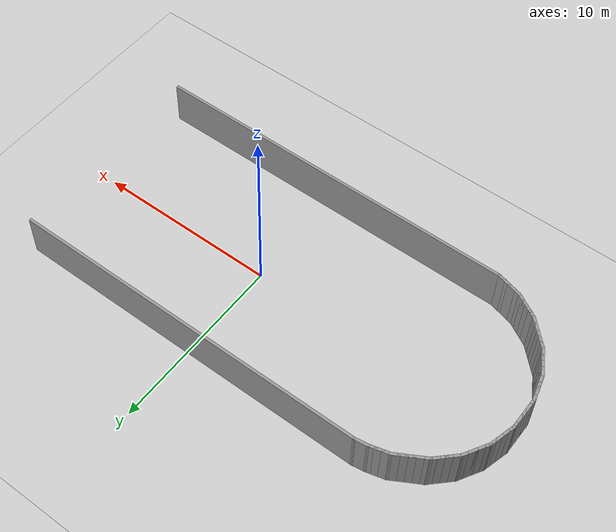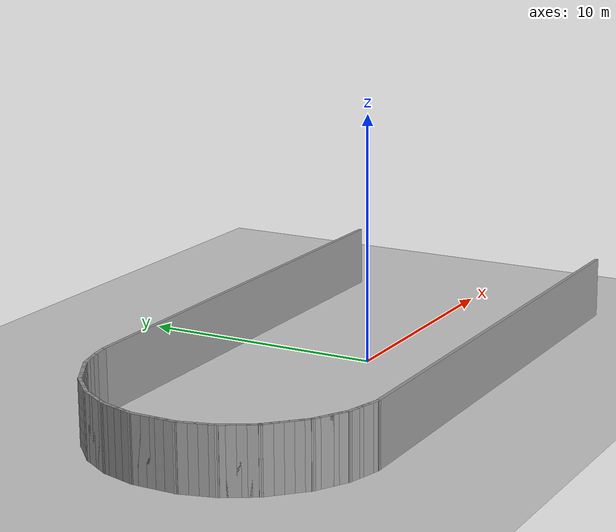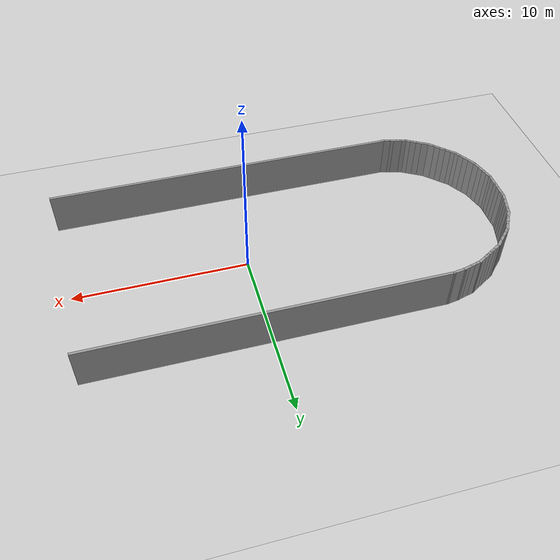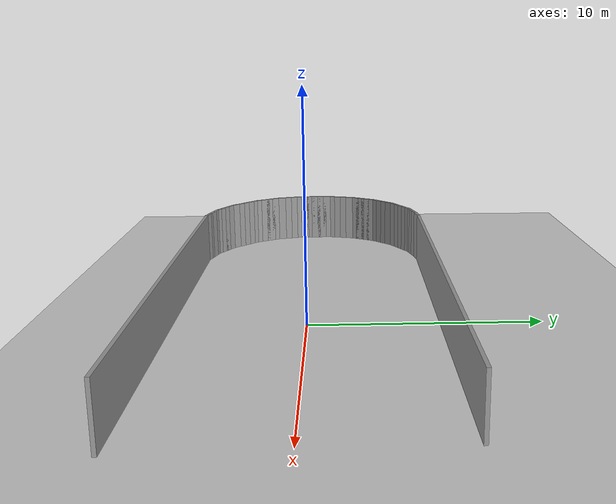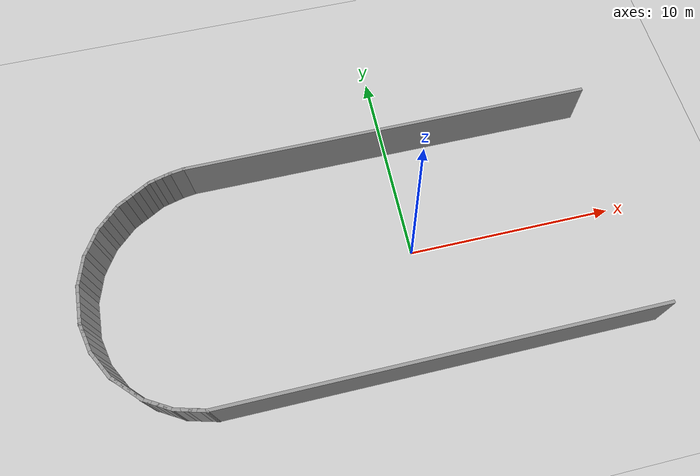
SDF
<sdf version="1.7">
 <world name="default">
  <model name="ground_plane">
   <static>1</static>
   <link name="link">
    <collision name="collision">
     <geometry><plane><normal>0 0 1</normal><size>100 100</size></plane></geometry>
     <surface><friction><ode><mu>100</mu><mu2>50</mu2></ode></friction></surface>
    </collision>
    <visual name="visual">
     <cast_shadows>0</cast_shadows>
     <geometry><plane><normal>0 0 1</normal><size>100 100</size></plane></geometry>
     <material>
      <script><uri>file://media/materials/scripts/gazebo.material</uri><name>Gazebo/Grey</name></script>
     </material>
    </visual>
   </link>
  </model>
  <model name="pool_wall">
   <pose>0.10892 -0.02488 0 0 -0 0</pose>
   <link name="Wall_0">
    <collision name="Wall_0_Collision">
     <geometry><box><size>20 0.15 2.5</size></box></geometry>
     <pose>0 0 1.25 0 -0 0</pose>
    </collision>
    <visual name="Wall_0_Visual">
     <pose>0 0 1.25 0 -0 0</pose>
     <geometry><box><size>20 0.15 2.5</size></box></geometry>
     <material>
      <script><uri>file://media/materials/scripts/gazebo.material</uri><name>Gazebo/Grey</name></script>
      <ambient>1 1 1 1</ambient>
     </material>
     <meta><layer>0</layer></meta>
    </visual>
    <pose>0.020613 5.7088 0 0 -0 0</pose>
   </link>
   <link name="Wall_100">
    <collision name="Wall_100_Collision">
     <geometry><box><size>0.814629 0.15 2.5</size></box></geometry>
     <pose>0 0 1.25 0 -0 0</pose>
    </collision>
    <visual name="Wall_100_Visual">
     <pose>0 0 1.25 0 -0 0</pose>
     <geometry><box><size>0.814629 0.15 2.5</size></box></geometry>
     <material>
      <script><uri>file://media/materials/scripts/gazebo.material</uri><name>Gazebo/Grey</name></script>
      <ambient>1 1 1 1</ambient>
     </material>
     <meta><layer>0</layer></meta>
    </visual>
    <pose>-10.2328 5.65798 0 0 -0 0.153519</pose>
   </link>
   <link name="Wall_51">
    <collision name="Wall_51_Collision">
     <geometry><box><size>20.5 0.15 2.5</size></box></geometry>
     <pose>0 0 1.25 0 -0 0</pose>
    </collision>
    <visual name="Wall_51_Visual">
     <pose>0 0 1.25 0 -0 0</pose>
     <geometry><box><size>20.5 0.15 2.5</size></box></geometry>
     <material>
      <script><uri>file://media/materials/scripts/gazebo.material</uri><name>Gazebo/Grey</name></script>
      <ambient>1 1 1 1</ambient>
     </material>
     <meta><layer>0</layer></meta>
    </visual>
    <pose>-0.103747 -5.7088 0 0 -0 3.14159</pose>
   </link>
   <link name="Wall_52">
    <collision name="Wall_52_Collision">
     <geometry><box><size>0.5 0.15 2.5</size></box></geometry>
     <pose>0 0 1.25 0 -0 0</pose>
    </collision>
    <visual name="Wall_52_Visual">
     <pose>0 0 1.25 0 -0 0</pose>
     <geometry><box><size>0.5 0.15 2.5</size></box></geometry>
     <material>
      <script><uri>file://media/materials/scripts/gazebo.material</uri><name>Gazebo/Grey</name></script>
      <ambient>1 1 1 1</ambient>
     </material>
     <meta><layer>0</layer></meta>
    </visual>
    <pose>-10.4478 -5.6635 0 0 -0 2.87979</pose>
   </link>
   <link name="Wall_53">
    <collision name="Wall_53_Collision">
     <geometry><box><size>0.5 0.15 2.5</size></box></geometry>
     <pose>0 0 1.25 0 -0 0</pose>
    </collision>
    <visual name="Wall_53_Visual">
     <pose>0 0 1.25 0 -0 0</pose>
     <geometry><box><size>0.5 0.15 2.5</size></box></geometry>
     <material>
      <script><uri>file://media/materials/scripts/gazebo.material</uri><name>Gazebo/Grey</name></script>
      <ambient>1 1 1 1</ambient>
     </material>
     <meta><layer>0</layer></meta>
    </visual>
    <pose>-10.7859 -5.57292 0 0 -0 2.87979</pose>
   </link>
   <link name="Wall_54">
    <collision name="Wall_54_Collision">
     <geometry><box><size>0.5 0.15 2.5</size></box></geometry>
     <pose>0 0 1.25 0 -0 0</pose>
    </collision>
    <visual name="Wall_54_Visual">
     <pose>0 0 1.25 0 -0 0</pose>
     <geometry><box><size>0.5 0.15 2.5</size></box></geometry>
     <material>
      <script><uri>file://media/materials/scripts/gazebo.material</uri><name>Gazebo/Grey</name></script>
      <ambient>1 1 1 1</ambient>
     </material>
     <meta><layer>0</layer></meta>
    </visual>
    <pose>-11.1239 -5.48233 0 0 -0 2.87979</pose>
   </link>
   <link name="Wall_55">
    <collision name="Wall_55_Collision">
     <geometry><box><size>0.5 0.15 2.5</size></box></geometry>
     <pose>0 0 1.25 0 -0 0</pose>
    </collision>
    <visual name="Wall_55_Visual">
     <pose>0 0 1.25 0 -0 0</pose>
     <geometry><box><size>0.5 0.15 2.5</size></box></geometry>
     <material>
      <script><uri>file://media/materials/scripts/gazebo.material</uri><name>Gazebo/Grey</name></script>
      <ambient>1 1 1 1</ambient>
     </material>
     <meta><layer>0</layer></meta>
    </visual>
    <pose>-11.462 -5.39174 0 0 -0 2.87979</pose>
   </link>
   <link name="Wall_56">
    <collision name="Wall_56_Collision">
     <geometry><box><size>0.5 0.15 2.5</size></box></geometry>
     <pose>0 0 1.25 0 -0 0</pose>
    </collision>
    <visual name="Wall_56_Visual">
     <pose>0 0 1.25 0 -0 0</pose>
     <geometry><box><size>0.5 0.15 2.5</size></box></geometry>
     <material>
      <script><uri>file://media/materials/scripts/gazebo.material</uri><name>Gazebo/Grey</name></script>
      <ambient>1 1 1 1</ambient>
     </material>
     <meta><layer>0</layer></meta>
    </visual>
    <pose>-11.7826 -5.25895 0 0 -0 2.61799</pose>
   </link>
   <link name="Wall_57">
    <collision name="Wall_57_Collision">
     <geometry><box><size>0.5 0.15 2.5</size></box></geometry>
     <pose>0 0 1.25 0 -0 0</pose>
    </collision>
    <visual name="Wall_57_Visual">
     <pose>0 0 1.25 0 -0 0</pose>
     <geometry><box><size>0.5 0.15 2.5</size></box></geometry>
     <material>
      <script><uri>file://media/materials/scripts/gazebo.material</uri><name>Gazebo/Grey</name></script>
      <ambient>1 1 1 1</ambient>
     </material>
     <meta><layer>0</layer></meta>
    </visual>
    <pose>-12.0857 -5.08395 0 0 -0 2.61799</pose>
   </link>
   <link name="Wall_58">
    <collision name="Wall_58_Collision">
     <geometry><box><size>0.5 0.15 2.5</size></box></geometry>
     <pose>0 0 1.25 0 -0 0</pose>
    </collision>
    <visual name="Wall_58_Visual">
     <pose>0 0 1.25 0 -0 0</pose>
     <geometry><box><size>0.5 0.15 2.5</size></box></geometry>
     <material>
      <script><uri>file://media/materials/scripts/gazebo.material</uri><name>Gazebo/Grey</name></script>
      <ambient>1 1 1 1</ambient>
     </material>
     <meta><layer>0</layer></meta>
    </visual>
    <pose>-12.3888 -4.90895 0 0 -0 2.61799</pose>
   </link>
   <link name="Wall_59">
    <collision name="Wall_59_Collision">
     <geometry><box><size>0.5 0.15 2.5</size></box></geometry>
     <pose>0 0 1.25 0 -0 0</pose>
    </collision>
    <visual name="Wall_59_Visual">
     <pose>0 0 1.25 0 -0 0</pose>
     <geometry><box><size>0.5 0.15 2.5</size></box></geometry>
     <material>
      <script><uri>file://media/materials/scripts/gazebo.material</uri><name>Gazebo/Grey</name></script>
      <ambient>1 1 1 1</ambient>
     </material>
     <meta><layer>0</layer></meta>
    </visual>
    <pose>-12.6919 -4.73395 0 0 -0 2.61799</pose>
   </link>
   <link name="Wall_60">
    <collision name="Wall_60_Collision">
     <geometry><box><size>0.5 0.15 2.5</size></box></geometry>
     <pose>0 0 1.25 0 -0 0</pose>
    </collision>
    <visual name="Wall_60_Visual">
     <pose>0 0 1.25 0 -0 0</pose>
     <geometry><box><size>0.5 0.15 2.5</size></box></geometry>
     <material>
      <script><uri>file://media/materials/scripts/gazebo.material</uri><name>Gazebo/Grey</name></script>
      <ambient>1 1 1 1</ambient>
     </material>
     <meta><layer>0</layer></meta>
    </visual>
    <pose>-12.9672 -4.5227 0 0 -0 2.35619</pose>
   </link>
   <link name="Wall_61">
    <collision name="Wall_61_Collision">
     <geometry><box><size>0.5 0.15 2.5</size></box></geometry>
     <pose>0 0 1.25 0 -0 0</pose>
    </collision>
    <visual name="Wall_61_Visual">
     <pose>0 0 1.25 0 -0 0</pose>
     <geometry><box><size>0.5 0.15 2.5</size></box></geometry>
     <material>
      <script><uri>file://media/materials/scripts/gazebo.material</uri><name>Gazebo/Grey</name></script>
      <ambient>1 1 1 1</ambient>
     </material>
     <meta><layer>0</layer></meta>
    </visual>
    <pose>-13.2147 -4.27522 0 0 -0 2.35619</pose>
   </link>
   <link name="Wall_62">
    <collision name="Wall_62_Collision">
     <geometry><box><size>0.5 0.15 2.5</size></box></geometry>
     <pose>0 0 1.25 0 -0 0</pose>
    </collision>
    <visual name="Wall_62_Visual">
     <pose>0 0 1.25 0 -0 0</pose>
     <geometry><box><size>0.5 0.15 2.5</size></box></geometry>
     <material>
      <script><uri>file://media/materials/scripts/gazebo.material</uri><name>Gazebo/Grey</name></script>
      <ambient>1 1 1 1</ambient>
     </material>
     <meta><layer>0</layer></meta>
    </visual>
    <pose>-13.4622 -4.02773 0 0 -0 2.35619</pose>
   </link>
   <link name="Wall_63">
    <collision name="Wall_63_Collision">
     <geometry><box><size>0.5 0.15 2.5</size></box></geometry>
     <pose>0 0 1.25 0 -0 0</pose>
    </collision>
    <visual name="Wall_63_Visual">
     <pose>0 0 1.25 0 -0 0</pose>
     <geometry><box><size>0.5 0.15 2.5</size></box></geometry>
     <material>
      <script><uri>file://media/materials/scripts/gazebo.material</uri><name>Gazebo/Grey</name></script>
      <ambient>1 1 1 1</ambient>
     </material>
     <meta><layer>0</layer></meta>
    </visual>
    <pose>-13.7097 -3.78024 0 0 -0 2.35619</pose>
   </link>
   <link name="Wall_64">
    <collision name="Wall_64_Collision">
     <geometry><box><size>0.5 0.15 2.5</size></box></geometry>
     <pose>0 0 1.25 0 -0 0</pose>
    </collision>
    <visual name="Wall_64_Visual">
     <pose>0 0 1.25 0 -0 0</pose>
     <geometry><box><size>0.5 0.15 2.5</size></box></geometry>
     <material>
      <script><uri>file://media/materials/scripts/gazebo.material</uri><name>Gazebo/Grey</name></script>
      <ambient>1 1 1 1</ambient>
     </material>
     <meta><layer>0</layer></meta>
    </visual>
    <pose>-13.9572 -3.53275 0 0 -0 2.35619</pose>
   </link>
   <link name="Wall_65">
    <collision name="Wall_65_Collision">
     <geometry><box><size>0.5 0.15 2.5</size></box></geometry>
     <pose>0 0 1.25 0 -0 0</pose>
    </collision>
    <visual name="Wall_65_Visual">
     <pose>0 0 1.25 0 -0 0</pose>
     <geometry><box><size>0.5 0.15 2.5</size></box></geometry>
     <material>
      <script><uri>file://media/materials/scripts/gazebo.material</uri><name>Gazebo/Grey</name></script>
      <ambient>1 1 1 1</ambient>
     </material>
     <meta><layer>0</layer></meta>
    </visual>
    <pose>-14.1684 -3.25746 0 0 -0 2.0944</pose>
   </link>
   <link name="Wall_68">
    <collision name="Wall_68_Collision">
     <geometry><box><size>0.5 0.15 2.5</size></box></geometry>
     <pose>0 0 1.25 0 -0 0</pose>
    </collision>
    <visual name="Wall_68_Visual">
     <pose>0 0 1.25 0 -0 0</pose>
     <geometry><box><size>0.5 0.15 2.5</size></box></geometry>
     <material>
      <script><uri>file://media/materials/scripts/gazebo.material</uri><name>Gazebo/Grey</name></script>
      <ambient>1 1 1 1</ambient>
     </material>
     <meta><layer>0</layer></meta>
    </visual>
    <pose>-14.3434 -2.95435 0 0 -0 2.0944</pose>
   </link>
   <link name="Wall_69">
    <collision name="Wall_69_Collision">
     <geometry><box><size>0.5 0.15 2.5</size></box></geometry>
     <pose>0 0 1.25 0 -0 0</pose>
    </collision>
    <visual name="Wall_69_Visual">
     <pose>0 0 1.25 0 -0 0</pose>
     <geometry><box><size>0.5 0.15 2.5</size></box></geometry>
     <material>
      <script><uri>file://media/materials/scripts/gazebo.material</uri><name>Gazebo/Grey</name></script>
      <ambient>1 1 1 1</ambient>
     </material>
     <meta><layer>0</layer></meta>
    </visual>
    <pose>-14.5184 -2.65124 0 0 -0 2.0944</pose>
   </link>
   <link name="Wall_70">
    <collision name="Wall_70_Collision">
     <geometry><box><size>0.5 0.15 2.5</size></box></geometry>
     <pose>0 0 1.25 0 -0 0</pose>
    </collision>
    <visual name="Wall_70_Visual">
     <pose>0 0 1.25 0 -0 0</pose>
     <geometry><box><size>0.5 0.15 2.5</size></box></geometry>
     <material>
      <script><uri>file://media/materials/scripts/gazebo.material</uri><name>Gazebo/Grey</name></script>
      <ambient>1 1 1 1</ambient>
     </material>
     <meta><layer>0</layer></meta>
    </visual>
    <pose>-14.6934 -2.34813 0 0 -0 2.0944</pose>
   </link>
   <link name="Wall_71">
    <collision name="Wall_71_Collision">
     <geometry><box><size>0.5 0.15 2.5</size></box></geometry>
     <pose>0 0 1.25 0 -0 0</pose>
    </collision>
    <visual name="Wall_71_Visual">
     <pose>0 0 1.25 0 -0 0</pose>
     <geometry><box><size>0.5 0.15 2.5</size></box></geometry>
     <material>
      <script><uri>file://media/materials/scripts/gazebo.material</uri><name>Gazebo/Grey</name></script>
      <ambient>1 1 1 1</ambient>
     </material>
     <meta><layer>0</layer></meta>
    </visual>
    <pose>-14.8262 -2.02754 0 0 -0 1.8326</pose>
   </link>
   <link name="Wall_72">
    <collision name="Wall_72_Collision">
     <geometry><box><size>0.5 0.15 2.5</size></box></geometry>
     <pose>0 0 1.25 0 -0 0</pose>
    </collision>
    <visual name="Wall_72_Visual">
     <pose>0 0 1.25 0 -0 0</pose>
     <geometry><box><size>0.5 0.15 2.5</size></box></geometry>
     <material>
      <script><uri>file://media/materials/scripts/gazebo.material</uri><name>Gazebo/Grey</name></script>
      <ambient>1 1 1 1</ambient>
     </material>
     <meta><layer>0</layer></meta>
    </visual>
    <pose>-14.9168 -1.68946 0 0 -0 1.8326</pose>
   </link>
   <link name="Wall_73">
    <collision name="Wall_73_Collision">
     <geometry><box><size>0.5 0.15 2.5</size></box></geometry>
     <pose>0 0 1.25 0 -0 0</pose>
    </collision>
    <visual name="Wall_73_Visual">
     <pose>0 0 1.25 0 -0 0</pose>
     <geometry><box><size>0.5 0.15 2.5</size></box></geometry>
     <material>
      <script><uri>file://media/materials/scripts/gazebo.material</uri><name>Gazebo/Grey</name></script>
      <ambient>1 1 1 1</ambient>
     </material>
     <meta><layer>0</layer></meta>
    </visual>
    <pose>-15.0074 -1.35139 0 0 -0 1.8326</pose>
   </link>
   <link name="Wall_74">
    <collision name="Wall_74_Collision">
     <geometry><box><size>0.5 0.15 2.5</size></box></geometry>
     <pose>0 0 1.25 0 -0 0</pose>
    </collision>
    <visual name="Wall_74_Visual">
     <pose>0 0 1.25 0 -0 0</pose>
     <geometry><box><size>0.5 0.15 2.5</size></box></geometry>
     <material>
      <script><uri>file://media/materials/scripts/gazebo.material</uri><name>Gazebo/Grey</name></script>
      <ambient>1 1 1 1</ambient>
     </material>
     <meta><layer>0</layer></meta>
    </visual>
    <pose>-15.098 -1.01332 0 0 -0 1.8326</pose>
   </link>
   <link name="Wall_75">
    <collision name="Wall_75_Collision">
     <geometry><box><size>0.5 0.15 2.5</size></box></geometry>
     <pose>0 0 1.25 0 -0 0</pose>
    </collision>
    <visual name="Wall_75_Visual">
     <pose>0 0 1.25 0 -0 0</pose>
     <geometry><box><size>0.5 0.15 2.5</size></box></geometry>
     <material>
      <script><uri>file://media/materials/scripts/gazebo.material</uri><name>Gazebo/Grey</name></script>
      <ambient>1 1 1 1</ambient>
     </material>
     <meta><layer>0</layer></meta>
    </visual>
    <pose>-15.1433 -0.669279 0 0 -0 1.5708</pose>
   </link>
   <link name="Wall_76">
    <collision name="Wall_76_Collision">
     <geometry><box><size>0.5 0.15 2.5</size></box></geometry>
     <pose>0 0 1.25 0 -0 0</pose>
    </collision>
    <visual name="Wall_76_Visual">
     <pose>0 0 1.25 0 -0 0</pose>
     <geometry><box><size>0.5 0.15 2.5</size></box></geometry>
     <material>
      <script><uri>file://media/materials/scripts/gazebo.material</uri><name>Gazebo/Grey</name></script>
      <ambient>1 1 1 1</ambient>
     </material>
     <meta><layer>0</layer></meta>
    </visual>
    <pose>-15.1433 -0.319279 0 0 -0 1.5708</pose>
   </link>
   <link name="Wall_77">
    <collision name="Wall_77_Collision">
     <geometry><box><size>0.5 0.15 2.5</size></box></geometry>
     <pose>0 0 1.25 0 -0 0</pose>
    </collision>
    <visual name="Wall_77_Visual">
     <pose>0 0 1.25 0 -0 0</pose>
     <geometry><box><size>0.5 0.15 2.5</size></box></geometry>
     <material>
      <script><uri>file://media/materials/scripts/gazebo.material</uri><name>Gazebo/Grey</name></script>
      <ambient>1 1 1 1</ambient>
     </material>
     <meta><layer>0</layer></meta>
    </visual>
    <pose>-15.1433 0.030721 0 0 -0 1.5708</pose>
   </link>
   <link name="Wall_78">
    <collision name="Wall_78_Collision">
     <geometry><box><size>0.5 0.15 2.5</size></box></geometry>
     <pose>0 0 1.25 0 -0 0</pose>
    </collision>
    <visual name="Wall_78_Visual">
     <pose>0 0 1.25 0 -0 0</pose>
     <geometry><box><size>0.5 0.15 2.5</size></box></geometry>
     <material>
      <script><uri>file://media/materials/scripts/gazebo.material</uri><name>Gazebo/Grey</name></script>
      <ambient>1 1 1 1</ambient>
     </material>
     <meta><layer>0</layer></meta>
    </visual>
    <pose>-15.1433 0.380721 0 0 -0 1.5708</pose>
   </link>
   <link name="Wall_79">
    <collision name="Wall_79_Collision">
     <geometry><box><size>0.5 0.15 2.5</size></box></geometry>
     <pose>0 0 1.25 0 -0 0</pose>
    </collision>
    <visual name="Wall_79_Visual">
     <pose>0 0 1.25 0 -0 0</pose>
     <geometry><box><size>0.5 0.15 2.5</size></box></geometry>
     <material>
      <script><uri>file://media/materials/scripts/gazebo.material</uri><name>Gazebo/Grey</name></script>
      <ambient>1 1 1 1</ambient>
     </material>
     <meta><layer>0</layer></meta>
    </visual>
    <pose>-15.1433 0.730721 0 0 -0 1.5708</pose>
   </link>
   <link name="Wall_80">
    <collision name="Wall_80_Collision">
     <geometry><box><size>0.5 0.15 2.5</size></box></geometry>
     <pose>0 0 1.25 0 -0 0</pose>
    </collision>
    <visual name="Wall_80_Visual">
     <pose>0 0 1.25 0 -0 0</pose>
     <geometry><box><size>0.5 0.15 2.5</size></box></geometry>
     <material>
      <script><uri>file://media/materials/scripts/gazebo.material</uri><name>Gazebo/Grey</name></script>
      <ambient>1 1 1 1</ambient>
     </material>
     <meta><layer>0</layer></meta>
    </visual>
    <pose>-15.098 1.07476 0 0 -0 1.309</pose>
   </link>
   <link name="Wall_81">
    <collision name="Wall_81_Collision">
     <geometry><box><size>0.5 0.15 2.5</size></box></geometry>
     <pose>0 0 1.25 0 -0 0</pose>
    </collision>
    <visual name="Wall_81_Visual">
     <pose>0 0 1.25 0 -0 0</pose>
     <geometry><box><size>0.5 0.15 2.5</size></box></geometry>
     <material>
      <script><uri>file://media/materials/scripts/gazebo.material</uri><name>Gazebo/Grey</name></script>
      <ambient>1 1 1 1</ambient>
     </material>
     <meta><layer>0</layer></meta>
    </visual>
    <pose>-15.0074 1.41283 0 0 -0 1.309</pose>
   </link>
   <link name="Wall_82">
    <collision name="Wall_82_Collision">
     <geometry><box><size>0.5 0.15 2.5</size></box></geometry>
     <pose>0 0 1.25 0 -0 0</pose>
    </collision>
    <visual name="Wall_82_Visual">
     <pose>0 0 1.25 0 -0 0</pose>
     <geometry><box><size>0.5 0.15 2.5</size></box></geometry>
     <material>
      <script><uri>file://media/materials/scripts/gazebo.material</uri><name>Gazebo/Grey</name></script>
      <ambient>1 1 1 1</ambient>
     </material>
     <meta><layer>0</layer></meta>
    </visual>
    <pose>-14.9168 1.75091 0 0 -0 1.309</pose>
   </link>
   <link name="Wall_83">
    <collision name="Wall_83_Collision">
     <geometry><box><size>0.5 0.15 2.5</size></box></geometry>
     <pose>0 0 1.25 0 -0 0</pose>
    </collision>
    <visual name="Wall_83_Visual">
     <pose>0 0 1.25 0 -0 0</pose>
     <geometry><box><size>0.5 0.15 2.5</size></box></geometry>
     <material>
      <script><uri>file://media/materials/scripts/gazebo.material</uri><name>Gazebo/Grey</name></script>
      <ambient>1 1 1 1</ambient>
     </material>
     <meta><layer>0</layer></meta>
    </visual>
    <pose>-14.8262 2.08898 0 0 -0 1.309</pose>
   </link>
   <link name="Wall_84">
    <collision name="Wall_84_Collision">
     <geometry><box><size>0.5 0.15 2.5</size></box></geometry>
     <pose>0 0 1.25 0 -0 0</pose>
    </collision>
    <visual name="Wall_84_Visual">
     <pose>0 0 1.25 0 -0 0</pose>
     <geometry><box><size>0.5 0.15 2.5</size></box></geometry>
     <material>
      <script><uri>file://media/materials/scripts/gazebo.material</uri><name>Gazebo/Grey</name></script>
      <ambient>1 1 1 1</ambient>
     </material>
     <meta><layer>0</layer></meta>
    </visual>
    <pose>-14.6934 2.40957 0 0 -0 1.0472</pose>
   </link>
   <link name="Wall_85">
    <collision name="Wall_85_Collision">
     <geometry><box><size>0.5 0.15 2.5</size></box></geometry>
     <pose>0 0 1.25 0 -0 0</pose>
    </collision>
    <visual name="Wall_85_Visual">
     <pose>0 0 1.25 0 -0 0</pose>
     <geometry><box><size>0.5 0.15 2.5</size></box></geometry>
     <material>
      <script><uri>file://media/materials/scripts/gazebo.material</uri><name>Gazebo/Grey</name></script>
      <ambient>1 1 1 1</ambient>
     </material>
     <meta><layer>0</layer></meta>
    </visual>
    <pose>-14.5184 2.71268 0 0 -0 1.0472</pose>
   </link>
   <link name="Wall_86">
    <collision name="Wall_86_Collision">
     <geometry><box><size>0.5 0.15 2.5</size></box></geometry>
     <pose>0 0 1.25 0 -0 0</pose>
    </collision>
    <visual name="Wall_86_Visual">
     <pose>0 0 1.25 0 -0 0</pose>
     <geometry><box><size>0.5 0.15 2.5</size></box></geometry>
     <material>
      <script><uri>file://media/materials/scripts/gazebo.material</uri><name>Gazebo/Grey</name></script>
      <ambient>1 1 1 1</ambient>
     </material>
     <meta><layer>0</layer></meta>
    </visual>
    <pose>-14.3434 3.01579 0 0 -0 1.0472</pose>
   </link>
   <link name="Wall_87">
    <collision name="Wall_87_Collision">
     <geometry><box><size>0.5 0.15 2.5</size></box></geometry>
     <pose>0 0 1.25 0 -0 0</pose>
    </collision>
    <visual name="Wall_87_Visual">
     <pose>0 0 1.25 0 -0 0</pose>
     <geometry><box><size>0.5 0.15 2.5</size></box></geometry>
     <material>
      <script><uri>file://media/materials/scripts/gazebo.material</uri><name>Gazebo/Grey</name></script>
      <ambient>1 1 1 1</ambient>
     </material>
     <meta><layer>0</layer></meta>
    </visual>
    <pose>-14.1684 3.3189 0 0 -0 1.0472</pose>
   </link>
   <link name="Wall_88">
    <collision name="Wall_88_Collision">
     <geometry><box><size>0.5 0.15 2.5</size></box></geometry>
     <pose>0 0 1.25 0 -0 0</pose>
    </collision>
    <visual name="Wall_88_Visual">
     <pose>0 0 1.25 0 -0 0</pose>
     <geometry><box><size>0.5 0.15 2.5</size></box></geometry>
     <material>
      <script><uri>file://media/materials/scripts/gazebo.material</uri><name>Gazebo/Grey</name></script>
      <ambient>1 1 1 1</ambient>
     </material>
     <meta><layer>0</layer></meta>
    </visual>
    <pose>-13.9572 3.5942 0 0 -0 0.785398</pose>
   </link>
   <link name="Wall_89">
    <collision name="Wall_89_Collision">
     <geometry><box><size>0.5 0.15 2.5</size></box></geometry>
     <pose>0 0 1.25 0 -0 0</pose>
    </collision>
    <visual name="Wall_89_Visual">
     <pose>0 0 1.25 0 -0 0</pose>
     <geometry><box><size>0.5 0.15 2.5</size></box></geometry>
     <material>
      <script><uri>file://media/materials/scripts/gazebo.material</uri><name>Gazebo/Grey</name></script>
      <ambient>1 1 1 1</ambient>
     </material>
     <meta><layer>0</layer></meta>
    </visual>
    <pose>-13.7097 3.84168 0 0 -0 0.785398</pose>
   </link>
   <link name="Wall_90">
    <collision name="Wall_90_Collision">
     <geometry><box><size>0.5 0.15 2.5</size></box></geometry>
     <pose>0 0 1.25 0 -0 0</pose>
    </collision>
    <visual name="Wall_90_Visual">
     <pose>0 0 1.25 0 -0 0</pose>
     <geometry><box><size>0.5 0.15 2.5</size></box></geometry>
     <material>
      <script><uri>file://media/materials/scripts/gazebo.material</uri><name>Gazebo/Grey</name></script>
      <ambient>1 1 1 1</ambient>
     </material>
     <meta><layer>0</layer></meta>
    </visual>
    <pose>-13.4622 4.08917 0 0 -0 0.785398</pose>
   </link>
   <link name="Wall_91">
    <collision name="Wall_91_Collision">
     <geometry><box><size>0.5 0.15 2.5</size></box></geometry>
     <pose>0 0 1.25 0 -0 0</pose>
    </collision>
    <visual name="Wall_91_Visual">
     <pose>0 0 1.25 0 -0 0</pose>
     <geometry><box><size>0.5 0.15 2.5</size></box></geometry>
     <material>
      <script><uri>file://media/materials/scripts/gazebo.material</uri><name>Gazebo/Grey</name></script>
      <ambient>1 1 1 1</ambient>
     </material>
     <meta><layer>0</layer></meta>
    </visual>
    <pose>-13.2147 4.33666 0 0 -0 0.785398</pose>
   </link>
   <link name="Wall_92">
    <collision name="Wall_92_Collision">
     <geometry><box><size>0.5 0.15 2.5</size></box></geometry>
     <pose>0 0 1.25 0 -0 0</pose>
    </collision>
    <visual name="Wall_92_Visual">
     <pose>0 0 1.25 0 -0 0</pose>
     <geometry><box><size>0.5 0.15 2.5</size></box></geometry>
     <material>
      <script><uri>file://media/materials/scripts/gazebo.material</uri><name>Gazebo/Grey</name></script>
      <ambient>1 1 1 1</ambient>
     </material>
     <meta><layer>0</layer></meta>
    </visual>
    <pose>-12.9394 4.5479 0 0 -0 0.523599</pose>
   </link>
   <link name="Wall_93">
    <collision name="Wall_93_Collision">
     <geometry><box><size>0.5 0.15 2.5</size></box></geometry>
     <pose>0 0 1.25 0 -0 0</pose>
    </collision>
    <visual name="Wall_93_Visual">
     <pose>0 0 1.25 0 -0 0</pose>
     <geometry><box><size>0.5 0.15 2.5</size></box></geometry>
     <material>
      <script><uri>file://media/materials/scripts/gazebo.material</uri><name>Gazebo/Grey</name></script>
      <ambient>1 1 1 1</ambient>
     </material>
     <meta><layer>0</layer></meta>
    </visual>
    <pose>-12.6363 4.7229 0 0 -0 0.523599</pose>
   </link>
   <link name="Wall_94">
    <collision name="Wall_94_Collision">
     <geometry><box><size>0.5 0.15 2.5</size></box></geometry>
     <pose>0 0 1.25 0 -0 0</pose>
    </collision>
    <visual name="Wall_94_Visual">
     <pose>0 0 1.25 0 -0 0</pose>
     <geometry><box><size>0.5 0.15 2.5</size></box></geometry>
     <material>
      <script><uri>file://media/materials/scripts/gazebo.material</uri><name>Gazebo/Grey</name></script>
      <ambient>1 1 1 1</ambient>
     </material>
     <meta><layer>0</layer></meta>
    </visual>
    <pose>-12.3332 4.8979 0 0 -0 0.523599</pose>
   </link>
   <link name="Wall_95">
    <collision name="Wall_95_Collision">
     <geometry><box><size>0.5 0.15 2.5</size></box></geometry>
     <pose>0 0 1.25 0 -0 0</pose>
    </collision>
    <visual name="Wall_95_Visual">
     <pose>0 0 1.25 0 -0 0</pose>
     <geometry><box><size>0.5 0.15 2.5</size></box></geometry>
     <material>
      <script><uri>file://media/materials/scripts/gazebo.material</uri><name>Gazebo/Grey</name></script>
      <ambient>1 1 1 1</ambient>
     </material>
     <meta><layer>0</layer></meta>
    </visual>
    <pose>-12.0301 5.0729 0 0 -0 0.523599</pose>
   </link>
   <link name="Wall_96">
    <collision name="Wall_96_Collision">
     <geometry><box><size>0.5 0.15 2.5</size></box></geometry>
     <pose>0 0 1.25 0 -0 0</pose>
    </collision>
    <visual name="Wall_96_Visual">
     <pose>0 0 1.25 0 -0 0</pose>
     <geometry><box><size>0.5 0.15 2.5</size></box></geometry>
     <material>
      <script><uri>file://media/materials/scripts/gazebo.material</uri><name>Gazebo/Grey</name></script>
      <ambient>1 1 1 1</ambient>
     </material>
     <meta><layer>0</layer></meta>
    </visual>
    <pose>-11.727 5.2479 0 0 -0 0.523599</pose>
   </link>
   <link name="Wall_97">
    <collision name="Wall_97_Collision">
     <geometry><box><size>0.5 0.15 2.5</size></box></geometry>
     <pose>0 0 1.25 0 -0 0</pose>
    </collision>
    <visual name="Wall_97_Visual">
     <pose>0 0 1.25 0 -0 0</pose>
     <geometry><box><size>0.5 0.15 2.5</size></box></geometry>
     <material>
      <script><uri>file://media/materials/scripts/gazebo.material</uri><name>Gazebo/Grey</name></script>
      <ambient>1 1 1 1</ambient>
     </material>
     <meta><layer>0</layer></meta>
    </visual>
    <pose>-11.4064 5.3807 0 0 -0 0.261799</pose>
   </link>
   <link name="Wall_98">
    <collision name="Wall_98_Collision">
     <geometry><box><size>0.5 0.15 2.5</size></box></geometry>
     <pose>0 0 1.25 0 -0 0</pose>
    </collision>
    <visual name="Wall_98_Visual">
     <pose>0 0 1.25 0 -0 0</pose>
     <geometry><box><size>0.5 0.15 2.5</size></box></geometry>
     <material>
      <script><uri>file://media/materials/scripts/gazebo.material</uri><name>Gazebo/Grey</name></script>
      <ambient>1 1 1 1</ambient>
     </material>
     <meta><layer>0</layer></meta>
    </visual>
    <pose>-11.0683 5.47128 0 0 -0 0.261799</pose>
   </link>
   <link name="Wall_99">
    <collision name="Wall_99_Collision">
     <geometry><box><size>0.5 0.15 2.5</size></box></geometry>
     <pose>0 0 1.25 0 -0 0</pose>
    </collision>
    <visual name="Wall_99_Visual">
     <pose>0 0 1.25 0 -0 0</pose>
     <geometry><box><size>0.5 0.15 2.5</size></box></geometry>
     <material>
      <script><uri>file://media/materials/scripts/gazebo.material</uri><name>Gazebo/Grey</name></script>
      <ambient>1 1 1 1</ambient>
     </material>
     <meta><layer>0</layer></meta>
    </visual>
    <pose>-10.7302 5.56187 0 0 -0 0.261799</pose>
   </link>
   <static>1</static>
  </model>
 </world>
</sdf>
